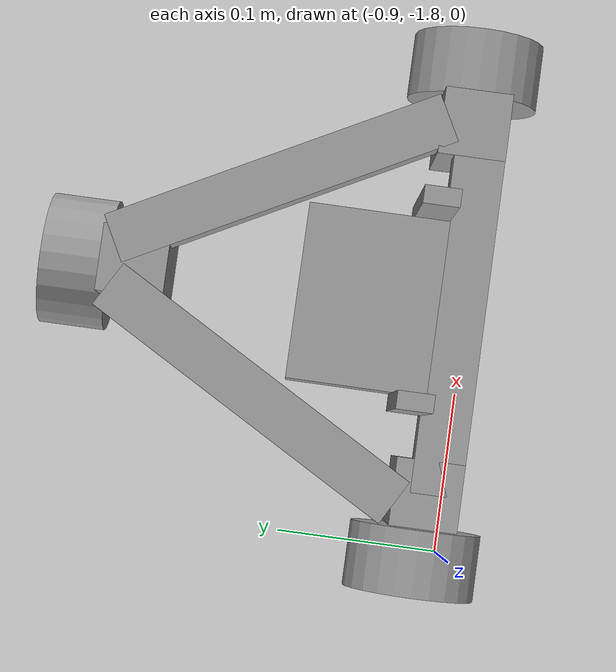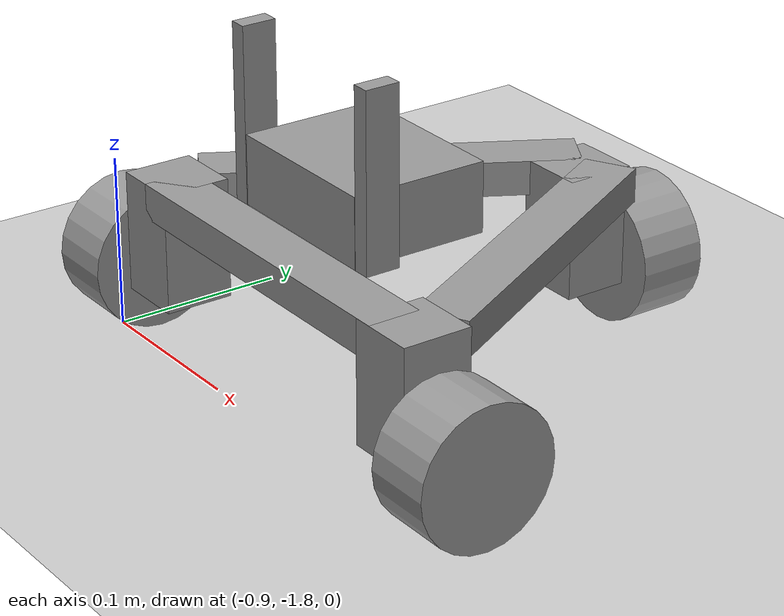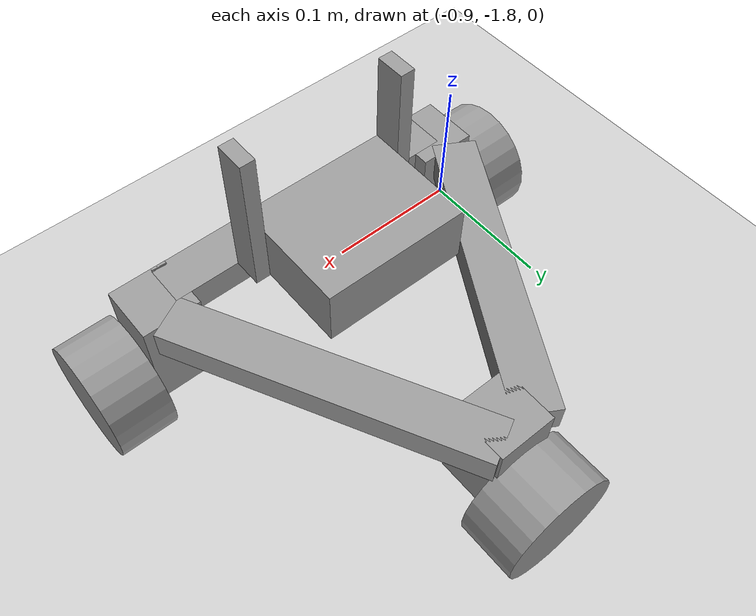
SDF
<sdf version="1.6">
 <world name="default">
  <model name="ground_plane">
   <static>1</static>
   <link name="link">
    <collision name="collision">
     <geometry><plane><normal>0 0 1</normal><size>100 100</size></plane></geometry>
     <surface><friction><ode><mu>100</mu><mu2>50</mu2></ode></friction></surface>
    </collision>
    <visual name="visual">
     <cast_shadows>0</cast_shadows>
     <geometry><plane><normal>0 0 1</normal><size>100 100</size></plane></geometry>
     <material>
      <script><uri>file://media/materials/scripts/gazebo.material</uri><name>Gazebo/Grey</name></script>
     </material>
    </visual>
   </link>
  </model>
  <model name="Kaya">
   <link name="link_0">
    <pose>-0.003284 -0.064713 0.005909 0 -0 0</pose>
    <inertial>
     <mass>1</mass>
     <inertia>
      <ixx>0.166667</ixx>
      <ixy>0</ixy>
      <ixz>0</ixz>
      <iyy>0.166667</iyy>
      <iyz>0</iyz>
      <izz>0.166667</izz>
     </inertia>
    </inertial>
    <visual name="visual">
     <geometry><box><size>0.21 0.03 0.02</size></box></geometry>
     <material>
      <lighting>1</lighting>
      <script><uri>file://media/materials/scripts/gazebo.material</uri><name>Gazebo/Grey</name></script>
      <ambient>0.3 0.3 0.3 1</ambient>
      <diffuse>0.7 0.7 0.7 1</diffuse>
      <specular>0.01 0.01 0.01 1</specular>
      <emissive>0 0 0 1</emissive>
      <shader type="vertex"><normal_map>__default__</normal_map></shader>
     </material>
    </visual>
    <collision name="collision">
     <geometry><box><size>0.21 0.03 0.02</size></box></geometry>
     <surface>
      <friction>
       <ode><mu>1</mu><mu2>1</mu2><fdir1>0 0 0</fdir1><slip1>0</slip1><slip2>0</slip2></ode>
       <torsional>
        <coefficient>1</coefficient>
        <patch_radius>0</patch_radius>
        <surface_radius>0</surface_radius>
        <use_patch_radius>1</use_patch_radius>
        <ode><slip>0</slip></ode>
       </torsional>
      </friction>
      <bounce><restitution_coefficient>0</restitution_coefficient><threshold>1e+06</threshold></bounce>
      <contact>
       <collide_without_contact>0</collide_without_contact>
       <collide_without_contact_bitmask>1</collide_without_contact_bitmask>
       <collide_bitmask>1</collide_bitmask>
       <ode>
        <soft_cfm>0</soft_cfm>
        <soft_erp>0.2</soft_erp>
        <kp>1e+13</kp>
        <kd>1</kd>
        <max_vel>0.01</max_vel>
        <min_depth>0</min_depth>
       </ode>
       <bullet>
        <split_impulse>1</split_impulse>
        <split_impulse_penetration_threshold>-0.01</split_impulse_penetration_threshold>
        <soft_cfm>0</soft_cfm>
        <soft_erp>0.2</soft_erp>
        <kp>1e+13</kp>
        <kd>1</kd>
       </bullet>
      </contact>
     </surface>
    </collision>
   </link>
   <link name="link_0_clone">
    <pose>0.063805 0.048952 0.005909 0 0 -1.08918</pose>
    <inertial>
     <mass>1</mass>
     <inertia>
      <ixx>0.166667</ixx>
      <ixy>0</ixy>
      <ixz>0</ixz>
      <iyy>0.166667</iyy>
      <iyz>0</iyz>
      <izz>0.166667</izz>
     </inertia>
    </inertial>
    <visual name="visual">
     <geometry><box><size>0.21 0.03 0.02</size></box></geometry>
     <material>
      <lighting>1</lighting>
      <script><uri>file://media/materials/scripts/gazebo.material</uri><name>Gazebo/Grey</name></script>
      <ambient>0.3 0.3 0.3 1</ambient>
      <diffuse>0.7 0.7 0.7 1</diffuse>
      <specular>0.01 0.01 0.01 1</specular>
      <emissive>0 0 0 1</emissive>
      <shader type="vertex"><normal_map>__default__</normal_map></shader>
     </material>
    </visual>
    <collision name="collision">
     <geometry><box><size>0.21 0.03 0.02</size></box></geometry>
     <surface>
      <friction>
       <ode><mu>1</mu><mu2>1</mu2><fdir1>0 0 0</fdir1><slip1>0</slip1><slip2>0</slip2></ode>
       <torsional>
        <coefficient>1</coefficient>
        <patch_radius>0</patch_radius>
        <surface_radius>0</surface_radius>
        <use_patch_radius>1</use_patch_radius>
        <ode><slip>0</slip></ode>
       </torsional>
      </friction>
      <bounce><restitution_coefficient>0</restitution_coefficient><threshold>1e+06</threshold></bounce>
      <contact>
       <collide_without_contact>0</collide_without_contact>
       <collide_without_contact_bitmask>1</collide_without_contact_bitmask>
       <collide_bitmask>1</collide_bitmask>
       <ode>
        <soft_cfm>0</soft_cfm>
        <soft_erp>0.2</soft_erp>
        <kp>1e+13</kp>
        <kd>1</kd>
        <max_vel>0.01</max_vel>
        <min_depth>0</min_depth>
       </ode>
       <bullet>
        <split_impulse>1</split_impulse>
        <split_impulse_penetration_threshold>-0.01</split_impulse_penetration_threshold>
        <soft_cfm>0</soft_cfm>
        <soft_erp>0.2</soft_erp>
        <kp>1e+13</kp>
        <kd>1</kd>
       </bullet>
      </contact>
     </surface>
    </collision>
   </link>
   <link name="link_0_clone_clone">
    <pose>-0.063575 0.049785 0.005909 0 0 -2.0892</pose>
    <inertial>
     <mass>1</mass>
     <inertia>
      <ixx>0.166667</ixx>
      <ixy>0</ixy>
      <ixz>0</ixz>
      <iyy>0.166667</iyy>
      <iyz>0</iyz>
      <izz>0.166667</izz>
     </inertia>
    </inertial>
    <visual name="visual">
     <geometry><box><size>0.21 0.03 0.02</size></box></geometry>
     <material>
      <lighting>1</lighting>
      <script><uri>file://media/materials/scripts/gazebo.material</uri><name>Gazebo/Grey</name></script>
      <ambient>0.3 0.3 0.3 1</ambient>
      <diffuse>0.7 0.7 0.7 1</diffuse>
      <specular>0.01 0.01 0.01 1</specular>
      <emissive>0 0 0 1</emissive>
      <shader type="vertex"><normal_map>__default__</normal_map></shader>
     </material>
    </visual>
    <collision name="collision">
     <geometry><box><size>0.21 0.03 0.02</size></box></geometry>
     <surface>
      <friction>
       <ode><mu>1</mu><mu2>1</mu2><fdir1>0 0 0</fdir1><slip1>0</slip1><slip2>0</slip2></ode>
       <torsional>
        <coefficient>1</coefficient>
        <patch_radius>0</patch_radius>
        <surface_radius>0</surface_radius>
        <use_patch_radius>1</use_patch_radius>
        <ode><slip>0</slip></ode>
       </torsional>
      </friction>
      <bounce><restitution_coefficient>0</restitution_coefficient><threshold>1e+06</threshold></bounce>
      <contact>
       <collide_without_contact>0</collide_without_contact>
       <collide_without_contact_bitmask>1</collide_without_contact_bitmask>
       <collide_bitmask>1</collide_bitmask>
       <ode>
        <soft_cfm>0</soft_cfm>
        <soft_erp>0.2</soft_erp>
        <kp>1e+13</kp>
        <kd>1</kd>
        <max_vel>0.01</max_vel>
        <min_depth>0</min_depth>
       </ode>
       <bullet>
        <split_impulse>1</split_impulse>
        <split_impulse_penetration_threshold>-0.01</split_impulse_penetration_threshold>
        <soft_cfm>0</soft_cfm>
        <soft_erp>0.2</soft_erp>
        <kp>1e+13</kp>
        <kd>1</kd>
       </bullet>
      </contact>
     </surface>
    </collision>
   </link>
   <link name="link_2">
    <pose>0.003786 0.128421 -0.019091 0 -0 0</pose>
    <inertial>
     <mass>1</mass>
     <inertia>
      <ixx>0.166667</ixx>
      <ixy>0</ixy>
      <ixz>0</ixz>
      <iyy>0.166667</iyy>
      <iyz>0</iyz>
      <izz>0.166667</izz>
     </inertia>
    </inertial>
    <visual name="visual">
     <geometry><box><size>0.04 0.04 0.07</size></box></geometry>
     <material>
      <lighting>1</lighting>
      <script><uri>file://media/materials/scripts/gazebo.material</uri><name>Gazebo/Grey</name></script>
      <ambient>0.3 0.3 0.3 1</ambient>
      <diffuse>0.7 0.7 0.7 1</diffuse>
      <specular>0.01 0.01 0.01 1</specular>
      <emissive>0 0 0 1</emissive>
      <shader type="vertex"><normal_map>__default__</normal_map></shader>
     </material>
    </visual>
    <collision name="collision">
     <geometry><box><size>0.04 0.04 0.07</size></box></geometry>
     <surface>
      <friction>
       <ode><mu>1</mu><mu2>1</mu2><fdir1>0 0 0</fdir1><slip1>0</slip1><slip2>0</slip2></ode>
       <torsional>
        <coefficient>1</coefficient>
        <patch_radius>0</patch_radius>
        <surface_radius>0</surface_radius>
        <use_patch_radius>1</use_patch_radius>
        <ode><slip>0</slip></ode>
       </torsional>
      </friction>
      <bounce><restitution_coefficient>0</restitution_coefficient><threshold>1e+06</threshold></bounce>
      <contact>
       <collide_without_contact>0</collide_without_contact>
       <collide_without_contact_bitmask>1</collide_without_contact_bitmask>
       <collide_bitmask>1</collide_bitmask>
       <ode>
        <soft_cfm>0</soft_cfm>
        <soft_erp>0.2</soft_erp>
        <kp>1e+13</kp>
        <kd>1</kd>
        <max_vel>0.01</max_vel>
        <min_depth>0</min_depth>
       </ode>
       <bullet>
        <split_impulse>1</split_impulse>
        <split_impulse_penetration_threshold>-0.01</split_impulse_penetration_threshold>
        <soft_cfm>0</soft_cfm>
        <soft_erp>0.2</soft_erp>
        <kp>1e+13</kp>
        <kd>1</kd>
       </bullet>
      </contact>
     </surface>
    </collision>
   </link>
   <link name="link_2_clone">
    <pose>0.110929 -0.059858 -0.019091 0 -0 0</pose>
    <inertial>
     <mass>1</mass>
     <inertia>
      <ixx>0.166667</ixx>
      <ixy>0</ixy>
      <ixz>0</ixz>
      <iyy>0.166667</iyy>
      <iyz>0</iyz>
      <izz>0.166667</izz>
     </inertia>
    </inertial>
    <visual name="visual">
     <geometry><box><size>0.04 0.04 0.07</size></box></geometry>
     <material>
      <lighting>1</lighting>
      <script><uri>file://media/materials/scripts/gazebo.material</uri><name>Gazebo/Grey</name></script>
      <ambient>0.3 0.3 0.3 1</ambient>
      <diffuse>0.7 0.7 0.7 1</diffuse>
      <specular>0.01 0.01 0.01 1</specular>
      <emissive>0 0 0 1</emissive>
      <shader type="vertex"><normal_map>__default__</normal_map></shader>
     </material>
    </visual>
    <collision name="collision">
     <geometry><box><size>0.04 0.04 0.07</size></box></geometry>
     <surface>
      <friction>
       <ode><mu>1</mu><mu2>1</mu2><fdir1>0 0 0</fdir1><slip1>0</slip1><slip2>0</slip2></ode>
       <torsional>
        <coefficient>1</coefficient>
        <patch_radius>0</patch_radius>
        <surface_radius>0</surface_radius>
        <use_patch_radius>1</use_patch_radius>
        <ode><slip>0</slip></ode>
       </torsional>
      </friction>
      <bounce><restitution_coefficient>0</restitution_coefficient><threshold>1e+06</threshold></bounce>
      <contact>
       <collide_without_contact>0</collide_without_contact>
       <collide_without_contact_bitmask>1</collide_without_contact_bitmask>
       <collide_bitmask>1</collide_bitmask>
       <ode>
        <soft_cfm>0</soft_cfm>
        <soft_erp>0.2</soft_erp>
        <kp>1e+13</kp>
        <kd>1</kd>
        <max_vel>0.01</max_vel>
        <min_depth>0</min_depth>
       </ode>
       <bullet>
        <split_impulse>1</split_impulse>
        <split_impulse_penetration_threshold>-0.01</split_impulse_penetration_threshold>
        <soft_cfm>0</soft_cfm>
        <soft_erp>0.2</soft_erp>
        <kp>1e+13</kp>
        <kd>1</kd>
       </bullet>
      </contact>
     </surface>
    </collision>
   </link>
   <link name="link_2_clone_clone">
    <pose>-0.108631 -0.059713 -0.019091 0 -0 0</pose>
    <inertial>
     <mass>1</mass>
     <inertia>
      <ixx>0.166667</ixx>
      <ixy>0</ixy>
      <ixz>0</ixz>
      <iyy>0.166667</iyy>
      <iyz>0</iyz>
      <izz>0.166667</izz>
     </inertia>
    </inertial>
    <visual name="visual">
     <geometry><box><size>0.04 0.04 0.07</size></box></geometry>
     <material>
      <lighting>1</lighting>
      <script><uri>file://media/materials/scripts/gazebo.material</uri><name>Gazebo/Grey</name></script>
      <ambient>0.3 0.3 0.3 1</ambient>
      <diffuse>0.7 0.7 0.7 1</diffuse>
      <specular>0.01 0.01 0.01 1</specular>
      <emissive>0 0 0 1</emissive>
      <shader type="vertex"><normal_map>__default__</normal_map></shader>
     </material>
    </visual>
    <collision name="collision">
     <geometry><box><size>0.04 0.04 0.07</size></box></geometry>
     <surface>
      <friction>
       <ode><mu>1</mu><mu2>1</mu2><fdir1>0 0 0</fdir1><slip1>0</slip1><slip2>0</slip2></ode>
       <torsional>
        <coefficient>1</coefficient>
        <patch_radius>0</patch_radius>
        <surface_radius>0</surface_radius>
        <use_patch_radius>1</use_patch_radius>
        <ode><slip>0</slip></ode>
       </torsional>
      </friction>
      <bounce><restitution_coefficient>0</restitution_coefficient><threshold>1e+06</threshold></bounce>
      <contact>
       <collide_without_contact>0</collide_without_contact>
       <collide_without_contact_bitmask>1</collide_without_contact_bitmask>
       <collide_bitmask>1</collide_bitmask>
       <ode>
        <soft_cfm>0</soft_cfm>
        <soft_erp>0.2</soft_erp>
        <kp>1e+13</kp>
        <kd>1</kd>
        <max_vel>0.01</max_vel>
        <min_depth>0</min_depth>
       </ode>
       <bullet>
        <split_impulse>1</split_impulse>
        <split_impulse_penetration_threshold>-0.01</split_impulse_penetration_threshold>
        <soft_cfm>0</soft_cfm>
        <soft_erp>0.2</soft_erp>
        <kp>1e+13</kp>
        <kd>1</kd>
       </bullet>
      </contact>
     </surface>
    </collision>
   </link>
   <link name="link_3">
    <pose>0.003786 0.165885 -0.042727 -1.5708 0 0</pose>
    <inertial>
     <mass>1</mass>
     <inertia><ixx>0.145833</ixx><ixy>0</ixy><ixz>0</ixz><iyy>0.145833</iyy><iyz>0</iyz><izz>0.125</izz></inertia>
    </inertial>
    <visual name="visual">
     <geometry><cylinder><radius>0.04</radius><length>0.04</length></cylinder></geometry>
     <material>
      <lighting>1</lighting>
      <script><uri>file://media/materials/scripts/gazebo.material</uri><name>Gazebo/Grey</name></script>
      <ambient>0.3 0.3 0.3 1</ambient>
      <diffuse>0.7 0.7 0.7 1</diffuse>
      <specular>0.01 0.01 0.01 1</specular>
      <emissive>0 0 0 1</emissive>
      <shader type="vertex"><normal_map>__default__</normal_map></shader>
     </material>
    </visual>
    <collision name="collision">
     <geometry><cylinder><radius>0.04</radius><length>0.04</length></cylinder></geometry>
     <surface>
      <friction>
       <ode><mu>1</mu><mu2>1</mu2><fdir1>0 0 0</fdir1><slip1>0</slip1><slip2>0</slip2></ode>
       <torsional>
        <coefficient>1</coefficient>
        <patch_radius>0</patch_radius>
        <surface_radius>0</surface_radius>
        <use_patch_radius>1</use_patch_radius>
        <ode><slip>0</slip></ode>
       </torsional>
      </friction>
      <bounce><restitution_coefficient>0</restitution_coefficient><threshold>1e+06</threshold></bounce>
      <contact>
       <collide_without_contact>0</collide_without_contact>
       <collide_without_contact_bitmask>1</collide_without_contact_bitmask>
       <collide_bitmask>1</collide_bitmask>
       <ode>
        <soft_cfm>0</soft_cfm>
        <soft_erp>0.2</soft_erp>
        <kp>1e+13</kp>
        <kd>1</kd>
        <max_vel>0.01</max_vel>
        <min_depth>0</min_depth>
       </ode>
       <bullet>
        <split_impulse>1</split_impulse>
        <split_impulse_penetration_threshold>-0.01</split_impulse_penetration_threshold>
        <soft_cfm>0</soft_cfm>
        <soft_erp>0.2</soft_erp>
        <kp>1e+13</kp>
        <kd>1</kd>
       </bullet>
      </contact>
     </surface>
    </collision>
   </link>
   <link name="link_3_clone">
    <pose>0.152356 -0.059858 -0.042727 -1.5708 -0 -1.5708</pose>
    <inertial>
     <mass>1</mass>
     <inertia><ixx>0.145833</ixx><ixy>0</ixy><ixz>0</ixz><iyy>0.145833</iyy><iyz>0</iyz><izz>0.125</izz></inertia>
    </inertial>
    <visual name="visual">
     <geometry><cylinder><radius>0.04</radius><length>0.04</length></cylinder></geometry>
     <material>
      <lighting>1</lighting>
      <script><uri>file://media/materials/scripts/gazebo.material</uri><name>Gazebo/Grey</name></script>
      <ambient>0.3 0.3 0.3 1</ambient>
      <diffuse>0.7 0.7 0.7 1</diffuse>
      <specular>0.01 0.01 0.01 1</specular>
      <emissive>0 0 0 1</emissive>
      <shader type="vertex"><normal_map>__default__</normal_map></shader>
     </material>
    </visual>
    <collision name="collision">
     <geometry><cylinder><radius>0.04</radius><length>0.04</length></cylinder></geometry>
     <surface>
      <friction>
       <ode><mu>1</mu><mu2>1</mu2><fdir1>0 0 0</fdir1><slip1>0</slip1><slip2>0</slip2></ode>
       <torsional>
        <coefficient>1</coefficient>
        <patch_radius>0</patch_radius>
        <surface_radius>0</surface_radius>
        <use_patch_radius>1</use_patch_radius>
        <ode><slip>0</slip></ode>
       </torsional>
      </friction>
      <bounce><restitution_coefficient>0</restitution_coefficient><threshold>1e+06</threshold></bounce>
      <contact>
       <collide_without_contact>0</collide_without_contact>
       <collide_without_contact_bitmask>1</collide_without_contact_bitmask>
       <collide_bitmask>1</collide_bitmask>
       <ode>
        <soft_cfm>0</soft_cfm>
        <soft_erp>0.2</soft_erp>
        <kp>1e+13</kp>
        <kd>1</kd>
        <max_vel>0.01</max_vel>
        <min_depth>0</min_depth>
       </ode>
       <bullet>
        <split_impulse>1</split_impulse>
        <split_impulse_penetration_threshold>-0.01</split_impulse_penetration_threshold>
        <soft_cfm>0</soft_cfm>
        <soft_erp>0.2</soft_erp>
        <kp>1e+13</kp>
        <kd>1</kd>
       </bullet>
      </contact>
     </surface>
    </collision>
   </link>
   <link name="link_3_clone_clone">
    <pose>-0.150254 -0.059713 -0.042727 -1.5708 0 1.5708</pose>
    <inertial>
     <mass>1</mass>
     <inertia><ixx>0.145833</ixx><ixy>0</ixy><ixz>0</ixz><iyy>0.145833</iyy><iyz>0</iyz><izz>0.125</izz></inertia>
    </inertial>
    <visual name="visual">
     <geometry><cylinder><radius>0.04</radius><length>0.04</length></cylinder></geometry>
     <material>
      <lighting>1</lighting>
      <script><uri>file://media/materials/scripts/gazebo.material</uri><name>Gazebo/Grey</name></script>
      <ambient>0.3 0.3 0.3 1</ambient>
      <diffuse>0.7 0.7 0.7 1</diffuse>
      <specular>0.01 0.01 0.01 1</specular>
      <emissive>0 0 0 1</emissive>
      <shader type="vertex"><normal_map>__default__</normal_map></shader>
     </material>
    </visual>
    <collision name="collision">
     <geometry><cylinder><radius>0.04</radius><length>0.04</length></cylinder></geometry>
     <surface>
      <friction>
       <ode><mu>1</mu><mu2>1</mu2><fdir1>0 0 0</fdir1><slip1>0</slip1><slip2>0</slip2></ode>
       <torsional>
        <coefficient>1</coefficient>
        <patch_radius>0</patch_radius>
        <surface_radius>0</surface_radius>
        <use_patch_radius>1</use_patch_radius>
        <ode><slip>0</slip></ode>
       </torsional>
      </friction>
      <bounce><restitution_coefficient>0</restitution_coefficient><threshold>1e+06</threshold></bounce>
      <contact>
       <collide_without_contact>0</collide_without_contact>
       <collide_without_contact_bitmask>1</collide_without_contact_bitmask>
       <collide_bitmask>1</collide_bitmask>
       <ode>
        <soft_cfm>0</soft_cfm>
        <soft_erp>0.2</soft_erp>
        <kp>1e+13</kp>
        <kd>1</kd>
        <max_vel>0.01</max_vel>
        <min_depth>0</min_depth>
       </ode>
       <bullet>
        <split_impulse>1</split_impulse>
        <split_impulse_penetration_threshold>-0.01</split_impulse_penetration_threshold>
        <soft_cfm>0</soft_cfm>
        <soft_erp>0.2</soft_erp>
        <kp>1e+13</kp>
        <kd>1</kd>
       </bullet>
      </contact>
     </surface>
    </collision>
   </link>
   <link name="link_4">
    <pose>-0.003284 -0.0095 0.035909 0 0 -1.57506</pose>
    <inertial>
     <mass>1</mass>
     <inertia>
      <ixx>0.166667</ixx>
      <ixy>0</ixy>
      <ixz>0</ixz>
      <iyy>0.166667</iyy>
      <iyz>0</iyz>
      <izz>0.166667</izz>
     </inertia>
    </inertial>
    <visual name="visual">
     <geometry><box><size>0.08 0.1 0.04</size></box></geometry>
     <material>
      <lighting>1</lighting>
      <script><uri>file://media/materials/scripts/gazebo.material</uri><name>Gazebo/Grey</name></script>
      <ambient>0.3 0.3 0.3 1</ambient>
      <diffuse>0.7 0.7 0.7 1</diffuse>
      <specular>0.01 0.01 0.01 1</specular>
      <emissive>0 0 0 1</emissive>
      <shader type="vertex"><normal_map>__default__</normal_map></shader>
     </material>
    </visual>
    <collision name="collision">
     <geometry><box><size>0.08 0.1 0.04</size></box></geometry>
     <surface>
      <friction>
       <ode><mu>1</mu><mu2>1</mu2><fdir1>0 0 0</fdir1><slip1>0</slip1><slip2>0</slip2></ode>
       <torsional>
        <coefficient>1</coefficient>
        <patch_radius>0</patch_radius>
        <surface_radius>0</surface_radius>
        <use_patch_radius>1</use_patch_radius>
        <ode><slip>0</slip></ode>
       </torsional>
      </friction>
      <bounce><restitution_coefficient>0</restitution_coefficient><threshold>1e+06</threshold></bounce>
      <contact>
       <collide_without_contact>0</collide_without_contact>
       <collide_without_contact_bitmask>1</collide_without_contact_bitmask>
       <collide_bitmask>1</collide_bitmask>
       <ode>
        <soft_cfm>0</soft_cfm>
        <soft_erp>0.2</soft_erp>
        <kp>1e+13</kp>
        <kd>1</kd>
        <max_vel>0.01</max_vel>
        <min_depth>0</min_depth>
       </ode>
       <bullet>
        <split_impulse>1</split_impulse>
        <split_impulse_penetration_threshold>-0.01</split_impulse_penetration_threshold>
        <soft_cfm>0</soft_cfm>
        <soft_erp>0.2</soft_erp>
        <kp>1e+13</kp>
        <kd>1</kd>
       </bullet>
      </contact>
     </surface>
    </collision>
   </link>
   <link name="link_5">
    <pose>-0.058454 -0.039713 0.065909 0 -0 0</pose>
    <inertial>
     <mass>1</mass>
     <inertia>
      <ixx>0.166667</ixx>
      <ixy>0</ixy>
      <ixz>0</ixz>
      <iyy>0.166667</iyy>
      <iyz>0</iyz>
      <izz>0.166667</izz>
     </inertia>
    </inertial>
    <visual name="visual">
     <geometry><box><size>0.01 0.02 0.1</size></box></geometry>
     <material>
      <lighting>1</lighting>
      <script><uri>file://media/materials/scripts/gazebo.material</uri><name>Gazebo/Grey</name></script>
      <ambient>0.3 0.3 0.3 1</ambient>
      <diffuse>0.7 0.7 0.7 1</diffuse>
      <specular>0.01 0.01 0.01 1</specular>
      <emissive>0 0 0 1</emissive>
      <shader type="vertex"><normal_map>__default__</normal_map></shader>
     </material>
    </visual>
    <collision name="collision">
     <geometry><box><size>0.01 0.02 0.1</size></box></geometry>
     <surface>
      <friction>
       <ode><mu>1</mu><mu2>1</mu2><fdir1>0 0 0</fdir1><slip1>0</slip1><slip2>0</slip2></ode>
       <torsional>
        <coefficient>1</coefficient>
        <patch_radius>0</patch_radius>
        <surface_radius>0</surface_radius>
        <use_patch_radius>1</use_patch_radius>
        <ode><slip>0</slip></ode>
       </torsional>
      </friction>
      <bounce><restitution_coefficient>0</restitution_coefficient><threshold>1e+06</threshold></bounce>
      <contact>
       <collide_without_contact>0</collide_without_contact>
       <collide_without_contact_bitmask>1</collide_without_contact_bitmask>
       <collide_bitmask>1</collide_bitmask>
       <ode>
        <soft_cfm>0</soft_cfm>
        <soft_erp>0.2</soft_erp>
        <kp>1e+13</kp>
        <kd>1</kd>
        <max_vel>0.01</max_vel>
        <min_depth>0</min_depth>
       </ode>
       <bullet>
        <split_impulse>1</split_impulse>
        <split_impulse_penetration_threshold>-0.01</split_impulse_penetration_threshold>
        <soft_cfm>0</soft_cfm>
        <soft_erp>0.2</soft_erp>
        <kp>1e+13</kp>
        <kd>1</kd>
       </bullet>
      </contact>
     </surface>
    </collision>
   </link>
   <link name="link_5_clone">
    <pose>0.051886 -0.039713 0.065909 0 -0 0</pose>
    <inertial>
     <mass>1</mass>
     <inertia>
      <ixx>0.166667</ixx>
      <ixy>0</ixy>
      <ixz>0</ixz>
      <iyy>0.166667</iyy>
      <iyz>0</iyz>
      <izz>0.166667</izz>
     </inertia>
    </inertial>
    <visual name="visual">
     <geometry><box><size>0.01 0.02 0.1</size></box></geometry>
     <material>
      <lighting>1</lighting>
      <script><uri>file://media/materials/scripts/gazebo.material</uri><name>Gazebo/Grey</name></script>
      <ambient>0.3 0.3 0.3 1</ambient>
      <diffuse>0.7 0.7 0.7 1</diffuse>
      <specular>0.01 0.01 0.01 1</specular>
      <emissive>0 0 0 1</emissive>
      <shader type="vertex"><normal_map>__default__</normal_map></shader>
     </material>
    </visual>
    <collision name="collision">
     <geometry><box><size>0.01 0.02 0.1</size></box></geometry>
     <surface>
      <friction>
       <ode><mu>1</mu><mu2>1</mu2><fdir1>0 0 0</fdir1><slip1>0</slip1><slip2>0</slip2></ode>
       <torsional>
        <coefficient>1</coefficient>
        <patch_radius>0</patch_radius>
        <surface_radius>0</surface_radius>
        <use_patch_radius>1</use_patch_radius>
        <ode><slip>0</slip></ode>
       </torsional>
      </friction>
      <bounce><restitution_coefficient>0</restitution_coefficient><threshold>1e+06</threshold></bounce>
      <contact>
       <collide_without_contact>0</collide_without_contact>
       <collide_without_contact_bitmask>1</collide_without_contact_bitmask>
       <collide_bitmask>1</collide_bitmask>
       <ode>
        <soft_cfm>0</soft_cfm>
        <soft_erp>0.2</soft_erp>
        <kp>1e+13</kp>
        <kd>1</kd>
        <max_vel>0.01</max_vel>
        <min_depth>0</min_depth>
       </ode>
       <bullet>
        <split_impulse>1</split_impulse>
        <split_impulse_penetration_threshold>-0.01</split_impulse_penetration_threshold>
        <soft_cfm>0</soft_cfm>
        <soft_erp>0.2</soft_erp>
        <kp>1e+13</kp>
        <kd>1</kd>
       </bullet>
      </contact>
     </surface>
    </collision>
   </link>
   <joint name="link_0_JOINT_10" type="fixed">
    <parent>link_0</parent>
    <child>link_2_clone_clone</child>
    <physics>
     <ode><limit><cfm>0</cfm><erp>0.2</erp></limit><suspension><cfm>0</cfm><erp>0.2</erp></suspension></ode>
    </physics>
   </joint>
   <joint name="link_0_JOINT_12" type="fixed">
    <parent>link_0</parent>
    <child>link_2_clone</child>
    <physics>
     <ode><limit><cfm>0</cfm><erp>0.2</erp></limit><suspension><cfm>0</cfm><erp>0.2</erp></suspension></ode>
    </physics>
   </joint>
   <joint name="link_0_JOINT_16" type="fixed">
    <parent>link_0</parent>
    <child>link_4</child>
    <physics>
     <ode><limit><cfm>0</cfm><erp>0.2</erp></limit><suspension><cfm>0</cfm><erp>0.2</erp></suspension></ode>
    </physics>
   </joint>
   <joint name="link_0_JOINT_2" type="fixed">
    <parent>link_0</parent>
    <child>link_0_clone</child>
    <physics>
     <ode><limit><cfm>0</cfm><erp>0.2</erp></limit><suspension><cfm>0</cfm><erp>0.2</erp></suspension></ode>
    </physics>
   </joint>
   <joint name="link_0_JOINT_3" type="fixed">
    <parent>link_0</parent>
    <child>link_0_clone_clone</child>
    <physics>
     <ode><limit><cfm>0</cfm><erp>0.2</erp></limit><suspension><cfm>0</cfm><erp>0.2</erp></suspension></ode>
    </physics>
   </joint>
   <joint name="link_0_clone_JOINT_13" type="fixed">
    <parent>link_0_clone</parent>
    <child>link_2_clone</child>
    <physics>
     <ode><limit><cfm>0</cfm><erp>0.2</erp></limit><suspension><cfm>0</cfm><erp>0.2</erp></suspension></ode>
    </physics>
   </joint>
   <joint name="link_0_clone_JOINT_5" type="fixed">
    <parent>link_0_clone</parent>
    <child>link_2</child>
    <physics>
     <ode><limit><cfm>0</cfm><erp>0.2</erp></limit><suspension><cfm>0</cfm><erp>0.2</erp></suspension></ode>
    </physics>
   </joint>
   <joint name="link_0_clone_clone_JOINT_4" type="fixed">
    <parent>link_0_clone_clone</parent>
    <child>link_0_clone</child>
    <physics>
     <ode><limit><cfm>0</cfm><erp>0.2</erp></limit><suspension><cfm>0</cfm><erp>0.2</erp></suspension></ode>
    </physics>
   </joint>
   <joint name="link_0_clone_clone_JOINT_6" type="fixed">
    <parent>link_0_clone_clone</parent>
    <child>link_2</child>
    <physics>
     <ode><limit><cfm>0</cfm><erp>0.2</erp></limit><suspension><cfm>0</cfm><erp>0.2</erp></suspension></ode>
    </physics>
   </joint>
   <joint name="link_0_clone_clone_JOINT_9" type="fixed">
    <parent>link_0_clone_clone</parent>
    <child>link_2_clone_clone</child>
    <physics>
     <ode><limit><cfm>0</cfm><erp>0.2</erp></limit><suspension><cfm>0</cfm><erp>0.2</erp></suspension></ode>
    </physics>
   </joint>
   <joint name="wheel1_joint" type="revolute">
    <parent>link_2</parent>
    <child>link_3</child>
    <axis>
     <xyz>0 0 1</xyz>
     <use_parent_model_frame>0</use_parent_model_frame>
     <limit><lower>-1e+16</lower><upper>1e+16</upper><effort>-1</effort><velocity>-1</velocity></limit>
     <dynamics>
      <spring_reference>0</spring_reference>
      <spring_stiffness>0</spring_stiffness>
      <damping>0</damping>
      <friction>0</friction>
     </dynamics>
    </axis>
    <physics>
     <ode><limit><cfm>0</cfm><erp>0.2</erp></limit><suspension><cfm>0</cfm><erp>0.2</erp></suspension></ode>
    </physics>
   </joint>
   <joint name="link_2_clone_JOINT_14" type="revolute">
    <parent>link_2_clone</parent>
    <child>link_3_clone</child>
    <axis>
     <xyz>1 0 0</xyz>
     <use_parent_model_frame>0</use_parent_model_frame>
     <limit>
      <lower>-1.79769e+308</lower>
      <upper>1.79769e+308</upper>
      <effort>-1</effort>
      <velocity>-1</velocity>
     </limit>
     <dynamics>
      <spring_reference>0</spring_reference>
      <spring_stiffness>0</spring_stiffness>
      <damping>0</damping>
     </dynamics>
    </axis>
    <physics>
     <ode><limit><cfm>0</cfm><erp>0.2</erp></limit><suspension><cfm>0</cfm><erp>0.2</erp></suspension></ode>
    </physics>
   </joint>
   <joint name="link_2_clone_clone_JOINT_15" type="revolute">
    <parent>link_2_clone_clone</parent>
    <child>link_3_clone_clone</child>
    <axis>
     <xyz>1 0 0</xyz>
     <use_parent_model_frame>0</use_parent_model_frame>
     <limit>
      <lower>-1.79769e+308</lower>
      <upper>1.79769e+308</upper>
      <effort>-1</effort>
      <velocity>-1</velocity>
     </limit>
     <dynamics>
      <spring_reference>0</spring_reference>
      <spring_stiffness>0</spring_stiffness>
      <damping>0</damping>
     </dynamics>
    </axis>
    <physics>
     <ode><limit><cfm>0</cfm><erp>0.2</erp></limit><suspension><cfm>0</cfm><erp>0.2</erp></suspension></ode>
    </physics>
   </joint>
   <joint name="link_4_JOINT_17" type="fixed">
    <parent>link_4</parent>
    <child>link_5</child>
    <physics>
     <ode><limit><cfm>0</cfm><erp>0.2</erp></limit><suspension><cfm>0</cfm><erp>0.2</erp></suspension></ode>
    </physics>
   </joint>
   <joint name="link_4_JOINT_18" type="fixed">
    <parent>link_4</parent>
    <child>link_5_clone</child>
    <physics>
     <ode><limit><cfm>0</cfm><erp>0.2</erp></limit><suspension><cfm>0</cfm><erp>0.2</erp></suspension></ode>
    </physics>
   </joint>
   <static>0</static>
   <pose>-0.754704 -1.72349 0.082727 2e-05 3e-06 -0.001324</pose>
  </model>
 </world>
</sdf>
